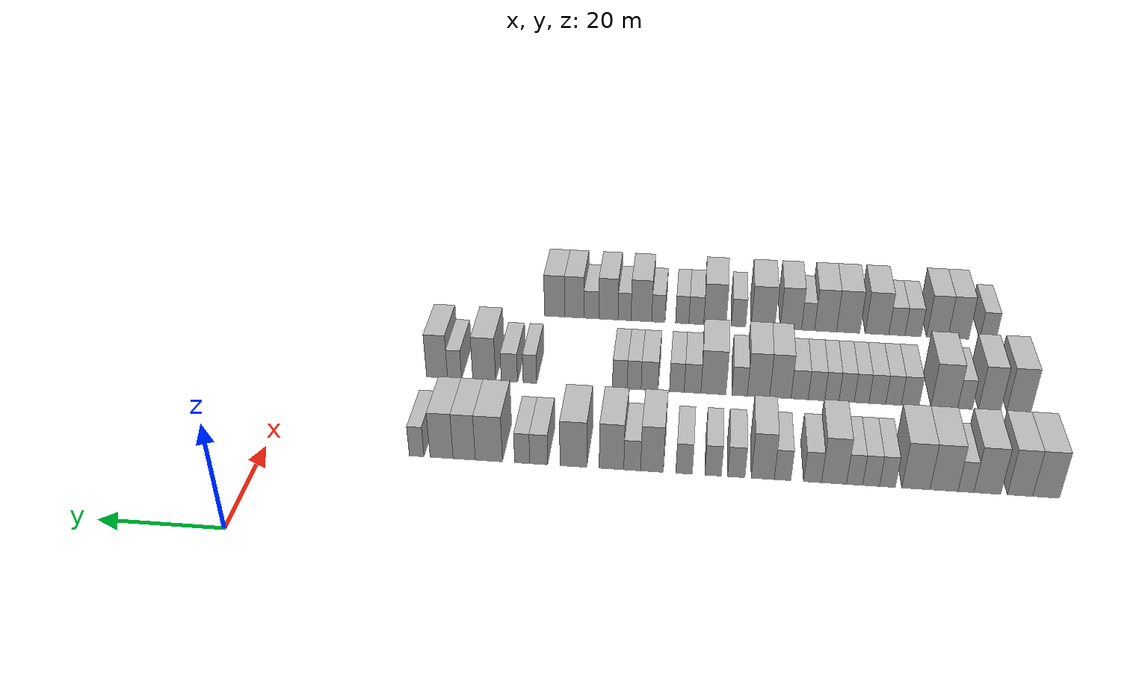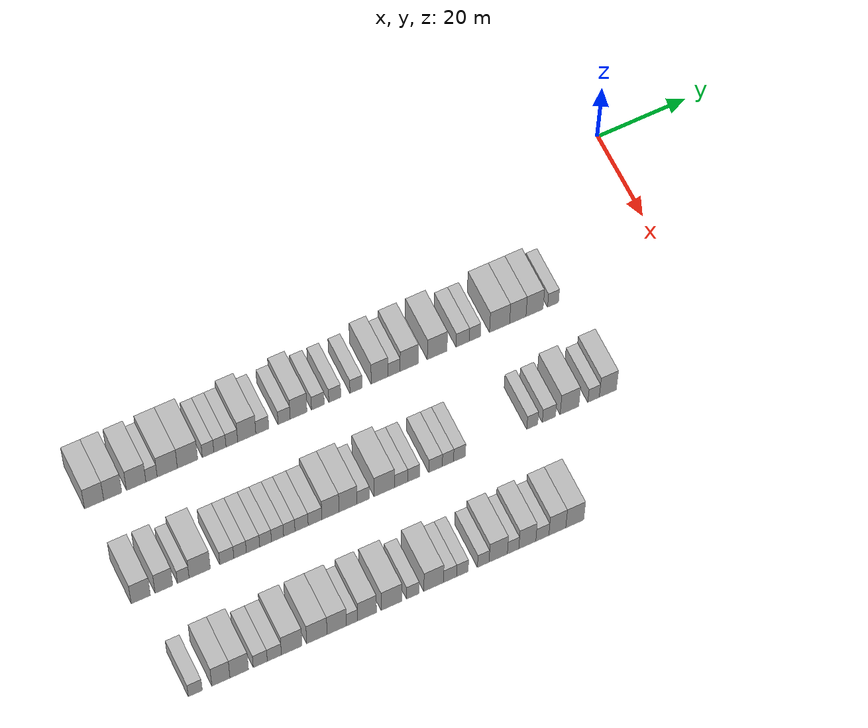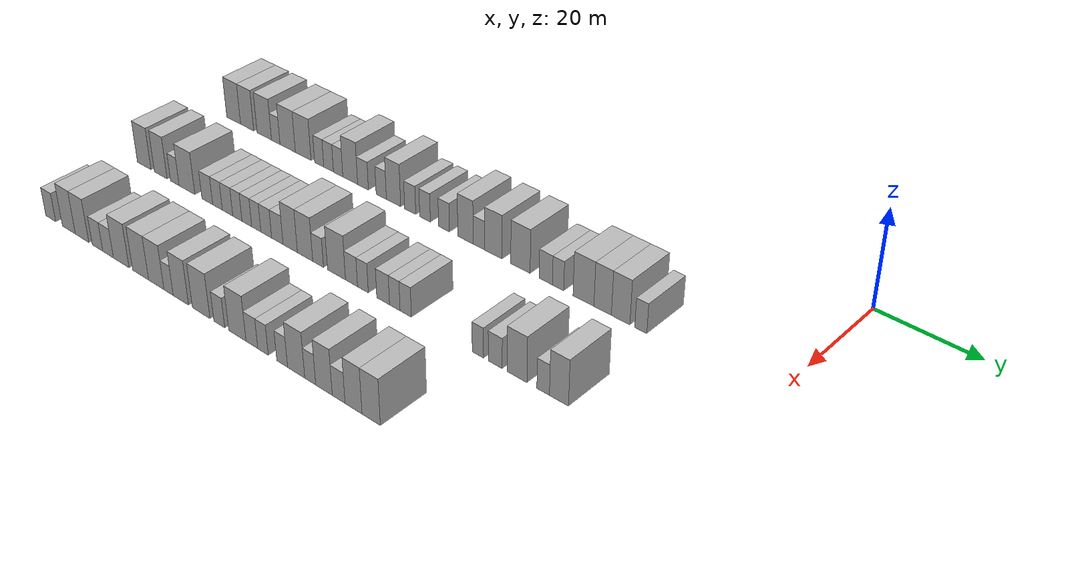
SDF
<sdf version="1.6">
 <world name="default">
  <model name="building_69">
   <static>1</static>
   <pose>25.0000 -124.9205 0 0.000000 0.000000 0.000000</pose>
   <link name="link">
    <pose>0 0 4.50 0 0 0</pose>
    <collision name="collision"><geometry><box><size>10.0000 4.0833 9.0000</size></box></geometry></collision>
    <visual name="visual">
     <cast_shadows>0</cast_shadows>
     <geometry><box><size>10.0000 4.0833 9.0000</size></box></geometry>
     <material>
      <script>
       <uri>model://HANNAS_wall/materials/scripts</uri>
       <uri>model://HANNAS_wall/materials/textures</uri>
       <name>vrc/HANNAS_wall</name>
      </script>
     </material>
    </visual>
   </link>
  </model>
  <model name="building_70">
   <static>1</static>
   <pose>25.0000 -120.9544 0 0.000000 0.000000 0.000000</pose>
   <link name="link">
    <pose>0 0 4.50 0 0 0</pose>
    <collision name="collision"><geometry><box><size>10.0000 3.8489 9.0000</size></box></geometry></collision>
    <visual name="visual">
     <cast_shadows>0</cast_shadows>
     <geometry><box><size>10.0000 3.8489 9.0000</size></box></geometry>
     <material>
      <script>
       <uri>model://HANNAS_wall/materials/scripts</uri>
       <uri>model://HANNAS_wall/materials/textures</uri>
       <name>vrc/HANNAS_wall</name>
      </script>
     </material>
    </visual>
   </link>
  </model>
  <model name="building_71">
   <static>1</static>
   <pose>25.0000 -115.9559 0 0.000000 0.000000 0.000000</pose>
   <link name="link">
    <pose>0 0 4.50 0 0 0</pose>
    <collision name="collision"><geometry><box><size>10.0000 4.1480 9.0000</size></box></geometry></collision>
    <visual name="visual">
     <cast_shadows>0</cast_shadows>
     <geometry><box><size>10.0000 4.1480 9.0000</size></box></geometry>
     <material>
      <script>
       <uri>model://HANNAS_wall/materials/scripts</uri>
       <uri>model://HANNAS_wall/materials/textures</uri>
       <name>vrc/HANNAS_wall</name>
      </script>
     </material>
    </visual>
   </link>
  </model>
  <model name="building_72">
   <static>1</static>
   <pose>25.0000 -112.6771 0 0.000000 0.000000 0.000000</pose>
   <link name="link">
    <pose>0 0 3.00 0 0 0</pose>
    <collision name="collision"><geometry><box><size>10.0000 2.4096 6.0000</size></box></geometry></collision>
    <visual name="visual">
     <cast_shadows>0</cast_shadows>
     <geometry><box><size>10.0000 2.4096 6.0000</size></box></geometry>
     <material>
      <script>
       <uri>model://HANNAS_wall/materials/scripts</uri>
       <uri>model://HANNAS_wall/materials/textures</uri>
       <name>vrc/HANNAS_wall</name>
      </script>
     </material>
    </visual>
   </link>
  </model>
  <model name="building_73">
   <static>1</static>
   <pose>25.0000 -109.3112 0 0.000000 0.000000 0.000000</pose>
   <link name="link">
    <pose>0 0 4.50 0 0 0</pose>
    <collision name="collision"><geometry><box><size>10.0000 4.3222 9.0000</size></box></geometry></collision>
    <visual name="visual">
     <cast_shadows>0</cast_shadows>
     <geometry><box><size>10.0000 4.3222 9.0000</size></box></geometry>
     <material>
      <script>
       <uri>model://HANNAS_wall/materials/scripts</uri>
       <uri>model://HANNAS_wall/materials/textures</uri>
       <name>vrc/HANNAS_wall</name>
      </script>
     </material>
    </visual>
   </link>
  </model>
  <model name="building_74">
   <static>1</static>
   <pose>25.0000 -104.9783 0 0.000000 0.000000 0.000000</pose>
   <link name="link">
    <pose>0 0 4.50 0 0 0</pose>
    <collision name="collision"><geometry><box><size>10.0000 4.3436 9.0000</size></box></geometry></collision>
    <visual name="visual">
     <cast_shadows>0</cast_shadows>
     <geometry><box><size>10.0000 4.3436 9.0000</size></box></geometry>
     <material>
      <script>
       <uri>model://HANNAS_wall/materials/scripts</uri>
       <uri>model://HANNAS_wall/materials/textures</uri>
       <name>vrc/HANNAS_wall</name>
      </script>
     </material>
    </visual>
   </link>
  </model>
  <model name="building_75">
   <static>1</static>
   <pose>25.0000 -100.5676 0 0.000000 0.000000 0.000000</pose>
   <link name="link">
    <pose>0 0 3.00 0 0 0</pose>
    <collision name="collision"><geometry><box><size>10.0000 2.4777 6.0000</size></box></geometry></collision>
    <visual name="visual">
     <cast_shadows>0</cast_shadows>
     <geometry><box><size>10.0000 2.4777 6.0000</size></box></geometry>
     <material>
      <script>
       <uri>model://HANNAS_wall/materials/scripts</uri>
       <uri>model://HANNAS_wall/materials/textures</uri>
       <name>vrc/HANNAS_wall</name>
      </script>
     </material>
    </visual>
   </link>
  </model>
  <model name="building_76">
   <static>1</static>
   <pose>25.0000 -98.0224 0 0.000000 0.000000 0.000000</pose>
   <link name="link">
    <pose>0 0 3.00 0 0 0</pose>
    <collision name="collision"><geometry><box><size>10.0000 2.6128 6.0000</size></box></geometry></collision>
    <visual name="visual">
     <cast_shadows>0</cast_shadows>
     <geometry><box><size>10.0000 2.6128 6.0000</size></box></geometry>
     <material>
      <script>
       <uri>model://HANNAS_wall/materials/scripts</uri>
       <uri>model://HANNAS_wall/materials/textures</uri>
       <name>vrc/HANNAS_wall</name>
      </script>
     </material>
    </visual>
   </link>
  </model>
  <model name="building_77">
   <static>1</static>
   <pose>25.0000 -95.4575 0 0.000000 0.000000 0.000000</pose>
   <link name="link">
    <pose>0 0 3.00 0 0 0</pose>
    <collision name="collision"><geometry><box><size>10.0000 2.5171 6.0000</size></box></geometry></collision>
    <visual name="visual">
     <cast_shadows>0</cast_shadows>
     <geometry><box><size>10.0000 2.5171 6.0000</size></box></geometry>
     <material>
      <script>
       <uri>model://HANNAS_wall/materials/scripts</uri>
       <uri>model://HANNAS_wall/materials/textures</uri>
       <name>vrc/HANNAS_wall</name>
      </script>
     </material>
    </visual>
   </link>
  </model>
  <model name="building_78">
   <static>1</static>
   <pose>25.0000 -92.2451 0 0.000000 0.000000 0.000000</pose>
   <link name="link">
    <pose>0 0 4.50 0 0 0</pose>
    <collision name="collision"><geometry><box><size>10.0000 3.9075 9.0000</size></box></geometry></collision>
    <visual name="visual">
     <cast_shadows>0</cast_shadows>
     <geometry><box><size>10.0000 3.9075 9.0000</size></box></geometry>
     <material>
      <script>
       <uri>model://HANNAS_wall/materials/scripts</uri>
       <uri>model://HANNAS_wall/materials/textures</uri>
       <name>vrc/HANNAS_wall</name>
      </script>
     </material>
    </visual>
   </link>
  </model>
  <model name="building_79">
   <static>1</static>
   <pose>25.0000 -88.8885 0 0.000000 0.000000 0.000000</pose>
   <link name="link">
    <pose>0 0 3.00 0 0 0</pose>
    <collision name="collision"><geometry><box><size>10.0000 2.8058 6.0000</size></box></geometry></collision>
    <visual name="visual">
     <cast_shadows>0</cast_shadows>
     <geometry><box><size>10.0000 2.8058 6.0000</size></box></geometry>
     <material>
      <script>
       <uri>model://HANNAS_wall/materials/scripts</uri>
       <uri>model://HANNAS_wall/materials/textures</uri>
       <name>vrc/HANNAS_wall</name>
      </script>
     </material>
    </visual>
   </link>
  </model>
  <model name="building_80">
   <static>1</static>
   <pose>25.0000 -84.1775 0 0.000000 0.000000 0.000000</pose>
   <link name="link">
    <pose>0 0 3.00 0 0 0</pose>
    <collision name="collision"><geometry><box><size>10.0000 2.6161 6.0000</size></box></geometry></collision>
    <visual name="visual">
     <cast_shadows>0</cast_shadows>
     <geometry><box><size>10.0000 2.6161 6.0000</size></box></geometry>
     <material>
      <script>
       <uri>model://HANNAS_wall/materials/scripts</uri>
       <uri>model://HANNAS_wall/materials/textures</uri>
       <name>vrc/HANNAS_wall</name>
      </script>
     </material>
    </visual>
   </link>
  </model>
  <model name="building_81">
   <static>1</static>
   <pose>25.0000 -81.0556 0 0.000000 0.000000 0.000000</pose>
   <link name="link">
    <pose>0 0 4.50 0 0 0</pose>
    <collision name="collision"><geometry><box><size>10.0000 3.6276 9.0000</size></box></geometry></collision>
    <visual name="visual">
     <cast_shadows>0</cast_shadows>
     <geometry><box><size>10.0000 3.6276 9.0000</size></box></geometry>
     <material>
      <script>
       <uri>model://HANNAS_wall/materials/scripts</uri>
       <uri>model://HANNAS_wall/materials/textures</uri>
       <name>vrc/HANNAS_wall</name>
      </script>
     </material>
    </visual>
   </link>
  </model>
  <model name="building_82">
   <static>1</static>
   <pose>25.0000 -76.8656 0 0.000000 0.000000 0.000000</pose>
   <link name="link">
    <pose>0 0 3.00 0 0 0</pose>
    <collision name="collision"><geometry><box><size>10.0000 2.7524 6.0000</size></box></geometry></collision>
    <visual name="visual">
     <cast_shadows>0</cast_shadows>
     <geometry><box><size>10.0000 2.7524 6.0000</size></box></geometry>
     <material>
      <script>
       <uri>model://HANNAS_wall/materials/scripts</uri>
       <uri>model://HANNAS_wall/materials/textures</uri>
       <name>vrc/HANNAS_wall</name>
      </script>
     </material>
    </visual>
   </link>
  </model>
  <model name="building_83">
   <static>1</static>
   <pose>25.0000 -73.1886 0 0.000000 0.000000 0.000000</pose>
   <link name="link">
    <pose>0 0 3.00 0 0 0</pose>
    <collision name="collision"><geometry><box><size>10.0000 2.6016 6.0000</size></box></geometry></collision>
    <visual name="visual">
     <cast_shadows>0</cast_shadows>
     <geometry><box><size>10.0000 2.6016 6.0000</size></box></geometry>
     <material>
      <script>
       <uri>model://HANNAS_wall/materials/scripts</uri>
       <uri>model://HANNAS_wall/materials/textures</uri>
       <name>vrc/HANNAS_wall</name>
      </script>
     </material>
    </visual>
   </link>
  </model>
  <model name="building_84">
   <static>1</static>
   <pose>25.0000 -68.5757 0 0.000000 0.000000 0.000000</pose>
   <link name="link">
    <pose>0 0 3.00 0 0 0</pose>
    <collision name="collision"><geometry><box><size>10.0000 2.6241 6.0000</size></box></geometry></collision>
    <visual name="visual">
     <cast_shadows>0</cast_shadows>
     <geometry><box><size>10.0000 2.6241 6.0000</size></box></geometry>
     <material>
      <script>
       <uri>model://HANNAS_wall/materials/scripts</uri>
       <uri>model://HANNAS_wall/materials/textures</uri>
       <name>vrc/HANNAS_wall</name>
      </script>
     </material>
    </visual>
   </link>
  </model>
  <model name="building_85">
   <static>1</static>
   <pose>25.0000 -63.4473 0 0.000000 0.000000 0.000000</pose>
   <link name="link">
    <pose>0 0 4.50 0 0 0</pose>
    <collision name="collision"><geometry><box><size>10.0000 3.6327 9.0000</size></box></geometry></collision>
    <visual name="visual">
     <cast_shadows>0</cast_shadows>
     <geometry><box><size>10.0000 3.6327 9.0000</size></box></geometry>
     <material>
      <script>
       <uri>model://HANNAS_wall/materials/scripts</uri>
       <uri>model://HANNAS_wall/materials/textures</uri>
       <name>vrc/HANNAS_wall</name>
      </script>
     </material>
    </visual>
   </link>
  </model>
  <model name="building_86">
   <static>1</static>
   <pose>25.0000 -60.2817 0 0.000000 0.000000 0.000000</pose>
   <link name="link">
    <pose>0 0 3.00 0 0 0</pose>
    <collision name="collision"><geometry><box><size>10.0000 2.6985 6.0000</size></box></geometry></collision>
    <visual name="visual">
     <cast_shadows>0</cast_shadows>
     <geometry><box><size>10.0000 2.6985 6.0000</size></box></geometry>
     <material>
      <script>
       <uri>model://HANNAS_wall/materials/scripts</uri>
       <uri>model://HANNAS_wall/materials/textures</uri>
       <name>vrc/HANNAS_wall</name>
      </script>
     </material>
    </visual>
   </link>
  </model>
  <model name="building_87">
   <static>1</static>
   <pose>25.0000 -56.9543 0 0.000000 0.000000 0.000000</pose>
   <link name="link">
    <pose>0 0 4.50 0 0 0</pose>
    <collision name="collision"><geometry><box><size>10.0000 3.9563 9.0000</size></box></geometry></collision>
    <visual name="visual">
     <cast_shadows>0</cast_shadows>
     <geometry><box><size>10.0000 3.9563 9.0000</size></box></geometry>
     <material>
      <script>
       <uri>model://HANNAS_wall/materials/scripts</uri>
       <uri>model://HANNAS_wall/materials/textures</uri>
       <name>vrc/HANNAS_wall</name>
      </script>
     </material>
    </visual>
   </link>
  </model>
  <model name="building_88">
   <static>1</static>
   <pose>25.0000 -50.8076 0 0.000000 0.000000 0.000000</pose>
   <link name="link">
    <pose>0 0 4.50 0 0 0</pose>
    <collision name="collision"><geometry><box><size>10.0000 4.3370 9.0000</size></box></geometry></collision>
    <visual name="visual">
     <cast_shadows>0</cast_shadows>
     <geometry><box><size>10.0000 4.3370 9.0000</size></box></geometry>
     <material>
      <script>
       <uri>model://HANNAS_wall/materials/scripts</uri>
       <uri>model://HANNAS_wall/materials/textures</uri>
       <name>vrc/HANNAS_wall</name>
      </script>
     </material>
    </visual>
   </link>
  </model>
  <model name="building_89">
   <static>1</static>
   <pose>25.0000 -45.1847 0 0.000000 0.000000 0.000000</pose>
   <link name="link">
    <pose>0 0 3.00 0 0 0</pose>
    <collision name="collision"><geometry><box><size>10.0000 2.9088 6.0000</size></box></geometry></collision>
    <visual name="visual">
     <cast_shadows>0</cast_shadows>
     <geometry><box><size>10.0000 2.9088 6.0000</size></box></geometry>
     <material>
      <script>
       <uri>model://HANNAS_wall/materials/scripts</uri>
       <uri>model://HANNAS_wall/materials/textures</uri>
       <name>vrc/HANNAS_wall</name>
      </script>
     </material>
    </visual>
   </link>
  </model>
  <model name="building_90">
   <static>1</static>
   <pose>25.0000 -42.4998 0 0.000000 0.000000 0.000000</pose>
   <link name="link">
    <pose>0 0 3.00 0 0 0</pose>
    <collision name="collision"><geometry><box><size>10.0000 2.4610 6.0000</size></box></geometry></collision>
    <visual name="visual">
     <cast_shadows>0</cast_shadows>
     <geometry><box><size>10.0000 2.4610 6.0000</size></box></geometry>
     <material>
      <script>
       <uri>model://HANNAS_wall/materials/scripts</uri>
       <uri>model://HANNAS_wall/materials/textures</uri>
       <name>vrc/HANNAS_wall</name>
      </script>
     </material>
    </visual>
   </link>
  </model>
  <model name="building_91">
   <static>1</static>
   <pose>25.0000 -37.0512 0 0.000000 0.000000 0.000000</pose>
   <link name="link">
    <pose>0 0 4.50 0 0 0</pose>
    <collision name="collision"><geometry><box><size>10.0000 4.4362 9.0000</size></box></geometry></collision>
    <visual name="visual">
     <cast_shadows>0</cast_shadows>
     <geometry><box><size>10.0000 4.4362 9.0000</size></box></geometry>
     <material>
      <script>
       <uri>model://HANNAS_wall/materials/scripts</uri>
       <uri>model://HANNAS_wall/materials/textures</uri>
       <name>vrc/HANNAS_wall</name>
      </script>
     </material>
    </visual>
   </link>
  </model>
  <model name="building_92">
   <static>1</static>
   <pose>25.0000 -33.0126 0 0.000000 0.000000 0.000000</pose>
   <link name="link">
    <pose>0 0 4.50 0 0 0</pose>
    <collision name="collision"><geometry><box><size>10.0000 3.6410 9.0000</size></box></geometry></collision>
    <visual name="visual">
     <cast_shadows>0</cast_shadows>
     <geometry><box><size>10.0000 3.6410 9.0000</size></box></geometry>
     <material>
      <script>
       <uri>model://HANNAS_wall/materials/scripts</uri>
       <uri>model://HANNAS_wall/materials/textures</uri>
       <name>vrc/HANNAS_wall</name>
      </script>
     </material>
    </visual>
   </link>
  </model>
  <model name="building_93">
   <static>1</static>
   <pose>25.0000 -29.2909 0 0.000000 0.000000 0.000000</pose>
   <link name="link">
    <pose>0 0 4.50 0 0 0</pose>
    <collision name="collision"><geometry><box><size>10.0000 3.8023 9.0000</size></box></geometry></collision>
    <visual name="visual">
     <cast_shadows>0</cast_shadows>
     <geometry><box><size>10.0000 3.8023 9.0000</size></box></geometry>
     <material>
      <script>
       <uri>model://HANNAS_wall/materials/scripts</uri>
       <uri>model://HANNAS_wall/materials/textures</uri>
       <name>vrc/HANNAS_wall</name>
      </script>
     </material>
    </visual>
   </link>
  </model>
  <model name="building_94">
   <static>1</static>
   <pose>25.0000 -25.1816 0 0.000000 0.000000 0.000000</pose>
   <link name="link">
    <pose>0 0 3.00 0 0 0</pose>
    <collision name="collision"><geometry><box><size>10.0000 2.4165 6.0000</size></box></geometry></collision>
    <visual name="visual">
     <cast_shadows>0</cast_shadows>
     <geometry><box><size>10.0000 2.4165 6.0000</size></box></geometry>
     <material>
      <script>
       <uri>model://HANNAS_wall/materials/scripts</uri>
       <uri>model://HANNAS_wall/materials/textures</uri>
       <name>vrc/HANNAS_wall</name>
      </script>
     </material>
    </visual>
   </link>
  </model>
  <model name="building_263">
   <static>1</static>
   <pose>47.0000 -124.8243 0 0.000000 0.000000 0.000000</pose>
   <link name="link">
    <pose>0 0 4.50 0 0 0</pose>
    <collision name="collision"><geometry><box><size>10.0000 4.0367 9.0000</size></box></geometry></collision>
    <visual name="visual">
     <cast_shadows>0</cast_shadows>
     <geometry><box><size>10.0000 4.0367 9.0000</size></box></geometry>
     <material>
      <script>
       <uri>model://HANNAS_wall/materials/scripts</uri>
       <uri>model://HANNAS_wall/materials/textures</uri>
       <name>vrc/HANNAS_wall</name>
      </script>
     </material>
    </visual>
   </link>
  </model>
  <model name="building_264">
   <static>1</static>
   <pose>47.0000 -119.9423 0 0.000000 0.000000 0.000000</pose>
   <link name="link">
    <pose>0 0 4.50 0 0 0</pose>
    <collision name="collision"><geometry><box><size>10.0000 3.7274 9.0000</size></box></geometry></collision>
    <visual name="visual">
     <cast_shadows>0</cast_shadows>
     <geometry><box><size>10.0000 3.7274 9.0000</size></box></geometry>
     <material>
      <script>
       <uri>model://HANNAS_wall/materials/scripts</uri>
       <uri>model://HANNAS_wall/materials/textures</uri>
       <name>vrc/HANNAS_wall</name>
      </script>
     </material>
    </visual>
   </link>
  </model>
  <model name="building_265">
   <static>1</static>
   <pose>47.0000 -115.8486 0 0.000000 0.000000 0.000000</pose>
   <link name="link">
    <pose>0 0 3.00 0 0 0</pose>
    <collision name="collision"><geometry><box><size>10.0000 2.4600 6.0000</size></box></geometry></collision>
    <visual name="visual">
     <cast_shadows>0</cast_shadows>
     <geometry><box><size>10.0000 2.4600 6.0000</size></box></geometry>
     <material>
      <script>
       <uri>model://HANNAS_wall/materials/scripts</uri>
       <uri>model://HANNAS_wall/materials/textures</uri>
       <name>vrc/HANNAS_wall</name>
      </script>
     </material>
    </visual>
   </link>
  </model>
  <model name="building_266">
   <static>1</static>
   <pose>47.0000 -112.3715 0 0.000000 0.000000 0.000000</pose>
   <link name="link">
    <pose>0 0 4.50 0 0 0</pose>
    <collision name="collision"><geometry><box><size>10.0000 4.4941 9.0000</size></box></geometry></collision>
    <visual name="visual">
     <cast_shadows>0</cast_shadows>
     <geometry><box><size>10.0000 4.4941 9.0000</size></box></geometry>
     <material>
      <script>
       <uri>model://HANNAS_wall/materials/scripts</uri>
       <uri>model://HANNAS_wall/materials/textures</uri>
       <name>vrc/HANNAS_wall</name>
      </script>
     </material>
    </visual>
   </link>
  </model>
  <model name="building_267">
   <static>1</static>
   <pose>47.0000 -106.6256 0 0.000000 0.000000 0.000000</pose>
   <link name="link">
    <pose>0 0 3.00 0 0 0</pose>
    <collision name="collision"><geometry><box><size>10.0000 2.9976 6.0000</size></box></geometry></collision>
    <visual name="visual">
     <cast_shadows>0</cast_shadows>
     <geometry><box><size>10.0000 2.9976 6.0000</size></box></geometry>
     <material>
      <script>
       <uri>model://HANNAS_wall/materials/scripts</uri>
       <uri>model://HANNAS_wall/materials/textures</uri>
       <name>vrc/HANNAS_wall</name>
      </script>
     </material>
    </visual>
   </link>
  </model>
  <model name="building_268">
   <static>1</static>
   <pose>47.0000 -103.7980 0 0.000000 0.000000 0.000000</pose>
   <link name="link">
    <pose>0 0 3.00 0 0 0</pose>
    <collision name="collision"><geometry><box><size>10.0000 2.6575 6.0000</size></box></geometry></collision>
    <visual name="visual">
     <cast_shadows>0</cast_shadows>
     <geometry><box><size>10.0000 2.6575 6.0000</size></box></geometry>
     <material>
      <script>
       <uri>model://HANNAS_wall/materials/scripts</uri>
       <uri>model://HANNAS_wall/materials/textures</uri>
       <name>vrc/HANNAS_wall</name>
      </script>
     </material>
    </visual>
   </link>
  </model>
  <model name="building_269">
   <static>1</static>
   <pose>47.0000 -101.0437 0 0.000000 0.000000 0.000000</pose>
   <link name="link">
    <pose>0 0 3.00 0 0 0</pose>
    <collision name="collision"><geometry><box><size>10.0000 2.8513 6.0000</size></box></geometry></collision>
    <visual name="visual">
     <cast_shadows>0</cast_shadows>
     <geometry><box><size>10.0000 2.8513 6.0000</size></box></geometry>
     <material>
      <script>
       <uri>model://HANNAS_wall/materials/scripts</uri>
       <uri>model://HANNAS_wall/materials/textures</uri>
       <name>vrc/HANNAS_wall</name>
      </script>
     </material>
    </visual>
   </link>
  </model>
  <model name="building_270">
   <static>1</static>
   <pose>47.0000 -98.3698 0 0.000000 0.000000 0.000000</pose>
   <link name="link">
    <pose>0 0 3.00 0 0 0</pose>
    <collision name="collision"><geometry><box><size>10.0000 2.4966 6.0000</size></box></geometry></collision>
    <visual name="visual">
     <cast_shadows>0</cast_shadows>
     <geometry><box><size>10.0000 2.4966 6.0000</size></box></geometry>
     <material>
      <script>
       <uri>model://HANNAS_wall/materials/scripts</uri>
       <uri>model://HANNAS_wall/materials/textures</uri>
       <name>vrc/HANNAS_wall</name>
      </script>
     </material>
    </visual>
   </link>
  </model>
  <model name="building_271">
   <static>1</static>
   <pose>47.0000 -95.8245 0 0.000000 0.000000 0.000000</pose>
   <link name="link">
    <pose>0 0 3.00 0 0 0</pose>
    <collision name="collision"><geometry><box><size>10.0000 2.5940 6.0000</size></box></geometry></collision>
    <visual name="visual">
     <cast_shadows>0</cast_shadows>
     <geometry><box><size>10.0000 2.5940 6.0000</size></box></geometry>
     <material>
      <script>
       <uri>model://HANNAS_wall/materials/scripts</uri>
       <uri>model://HANNAS_wall/materials/textures</uri>
       <name>vrc/HANNAS_wall</name>
      </script>
     </material>
    </visual>
   </link>
  </model>
  <model name="building_272">
   <static>1</static>
   <pose>47.0000 -93.3109 0 0.000000 0.000000 0.000000</pose>
   <link name="link">
    <pose>0 0 3.00 0 0 0</pose>
    <collision name="collision"><geometry><box><size>10.0000 2.4330 6.0000</size></box></geometry></collision>
    <visual name="visual">
     <cast_shadows>0</cast_shadows>
     <geometry><box><size>10.0000 2.4330 6.0000</size></box></geometry>
     <material>
      <script>
       <uri>model://HANNAS_wall/materials/scripts</uri>
       <uri>model://HANNAS_wall/materials/textures</uri>
       <name>vrc/HANNAS_wall</name>
      </script>
     </material>
    </visual>
   </link>
  </model>
  <model name="building_273">
   <static>1</static>
   <pose>47.0000 -90.6848 0 0.000000 0.000000 0.000000</pose>
   <link name="link">
    <pose>0 0 3.00 0 0 0</pose>
    <collision name="collision"><geometry><box><size>10.0000 2.8192 6.0000</size></box></geometry></collision>
    <visual name="visual">
     <cast_shadows>0</cast_shadows>
     <geometry><box><size>10.0000 2.8192 6.0000</size></box></geometry>
     <material>
      <script>
       <uri>model://HANNAS_wall/materials/scripts</uri>
       <uri>model://HANNAS_wall/materials/textures</uri>
       <name>vrc/HANNAS_wall</name>
      </script>
     </material>
    </visual>
   </link>
  </model>
  <model name="building_274">
   <static>1</static>
   <pose>47.0000 -87.8040 0 0.000000 0.000000 0.000000</pose>
   <link name="link">
    <pose>0 0 3.00 0 0 0</pose>
    <collision name="collision"><geometry><box><size>10.0000 2.9424 6.0000</size></box></geometry></collision>
    <visual name="visual">
     <cast_shadows>0</cast_shadows>
     <geometry><box><size>10.0000 2.9424 6.0000</size></box></geometry>
     <material>
      <script>
       <uri>model://HANNAS_wall/materials/scripts</uri>
       <uri>model://HANNAS_wall/materials/textures</uri>
       <name>vrc/HANNAS_wall</name>
      </script>
     </material>
    </visual>
   </link>
  </model>
  <model name="building_275">
   <static>1</static>
   <pose>47.0000 -84.4984 0 0.000000 0.000000 0.000000</pose>
   <link name="link">
    <pose>0 0 4.50 0 0 0</pose>
    <collision name="collision"><geometry><box><size>10.0000 3.6687 9.0000</size></box></geometry></collision>
    <visual name="visual">
     <cast_shadows>0</cast_shadows>
     <geometry><box><size>10.0000 3.6687 9.0000</size></box></geometry>
     <material>
      <script>
       <uri>model://HANNAS_wall/materials/scripts</uri>
       <uri>model://HANNAS_wall/materials/textures</uri>
       <name>vrc/HANNAS_wall</name>
      </script>
     </material>
    </visual>
   </link>
  </model>
  <model name="building_276">
   <static>1</static>
   <pose>47.0000 -80.7338 0 0.000000 0.000000 0.000000</pose>
   <link name="link">
    <pose>0 0 4.50 0 0 0</pose>
    <collision name="collision"><geometry><box><size>10.0000 3.8605 9.0000</size></box></geometry></collision>
    <visual name="visual">
     <cast_shadows>0</cast_shadows>
     <geometry><box><size>10.0000 3.8605 9.0000</size></box></geometry>
     <material>
      <script>
       <uri>model://HANNAS_wall/materials/scripts</uri>
       <uri>model://HANNAS_wall/materials/textures</uri>
       <name>vrc/HANNAS_wall</name>
      </script>
     </material>
    </visual>
   </link>
  </model>
  <model name="building_277">
   <static>1</static>
   <pose>47.0000 -77.4662 0 0.000000 0.000000 0.000000</pose>
   <link name="link">
    <pose>0 0 3.00 0 0 0</pose>
    <collision name="collision"><geometry><box><size>10.0000 2.6748 6.0000</size></box></geometry></collision>
    <visual name="visual">
     <cast_shadows>0</cast_shadows>
     <geometry><box><size>10.0000 2.6748 6.0000</size></box></geometry>
     <material>
      <script>
       <uri>model://HANNAS_wall/materials/scripts</uri>
       <uri>model://HANNAS_wall/materials/textures</uri>
       <name>vrc/HANNAS_wall</name>
      </script>
     </material>
    </visual>
   </link>
  </model>
  <model name="building_278">
   <static>1</static>
   <pose>47.0000 -72.9464 0 0.000000 0.000000 0.000000</pose>
   <link name="link">
    <pose>0 0 4.50 0 0 0</pose>
    <collision name="collision"><geometry><box><size>10.0000 4.3647 9.0000</size></box></geometry></collision>
    <visual name="visual">
     <cast_shadows>0</cast_shadows>
     <geometry><box><size>10.0000 4.3647 9.0000</size></box></geometry>
     <material>
      <script>
       <uri>model://HANNAS_wall/materials/scripts</uri>
       <uri>model://HANNAS_wall/materials/textures</uri>
       <name>vrc/HANNAS_wall</name>
      </script>
     </material>
    </visual>
   </link>
  </model>
  <model name="building_279">
   <static>1</static>
   <pose>47.0000 -69.3151 0 0.000000 0.000000 0.000000</pose>
   <link name="link">
    <pose>0 0 3.00 0 0 0</pose>
    <collision name="collision"><geometry><box><size>10.0000 2.8981 6.0000</size></box></geometry></collision>
    <visual name="visual">
     <cast_shadows>0</cast_shadows>
     <geometry><box><size>10.0000 2.8981 6.0000</size></box></geometry>
     <material>
      <script>
       <uri>model://HANNAS_wall/materials/scripts</uri>
       <uri>model://HANNAS_wall/materials/textures</uri>
       <name>vrc/HANNAS_wall</name>
      </script>
     </material>
    </visual>
   </link>
  </model>
  <model name="building_280">
   <static>1</static>
   <pose>47.0000 -66.5887 0 0.000000 0.000000 0.000000</pose>
   <link name="link">
    <pose>0 0 3.00 0 0 0</pose>
    <collision name="collision"><geometry><box><size>10.0000 2.5547 6.0000</size></box></geometry></collision>
    <visual name="visual">
     <cast_shadows>0</cast_shadows>
     <geometry><box><size>10.0000 2.5547 6.0000</size></box></geometry>
     <material>
      <script>
       <uri>model://HANNAS_wall/materials/scripts</uri>
       <uri>model://HANNAS_wall/materials/textures</uri>
       <name>vrc/HANNAS_wall</name>
      </script>
     </material>
    </visual>
   </link>
  </model>
  <model name="building_281">
   <static>1</static>
   <pose>47.0000 -61.8345 0 0.000000 0.000000 0.000000</pose>
   <link name="link">
    <pose>0 0 3.00 0 0 0</pose>
    <collision name="collision"><geometry><box><size>10.0000 2.9538 6.0000</size></box></geometry></collision>
    <visual name="visual">
     <cast_shadows>0</cast_shadows>
     <geometry><box><size>10.0000 2.9538 6.0000</size></box></geometry>
     <material>
      <script>
       <uri>model://HANNAS_wall/materials/scripts</uri>
       <uri>model://HANNAS_wall/materials/textures</uri>
       <name>vrc/HANNAS_wall</name>
      </script>
     </material>
    </visual>
   </link>
  </model>
  <model name="building_282">
   <static>1</static>
   <pose>47.0000 -59.1403 0 0.000000 0.000000 0.000000</pose>
   <link name="link">
    <pose>0 0 3.00 0 0 0</pose>
    <collision name="collision"><geometry><box><size>10.0000 2.4345 6.0000</size></box></geometry></collision>
    <visual name="visual">
     <cast_shadows>0</cast_shadows>
     <geometry><box><size>10.0000 2.4345 6.0000</size></box></geometry>
     <material>
      <script>
       <uri>model://HANNAS_wall/materials/scripts</uri>
       <uri>model://HANNAS_wall/materials/textures</uri>
       <name>vrc/HANNAS_wall</name>
      </script>
     </material>
    </visual>
   </link>
  </model>
  <model name="building_283">
   <static>1</static>
   <pose>47.0000 -56.6366 0 0.000000 0.000000 0.000000</pose>
   <link name="link">
    <pose>0 0 3.00 0 0 0</pose>
    <collision name="collision"><geometry><box><size>10.0000 2.5730 6.0000</size></box></geometry></collision>
    <visual name="visual">
     <cast_shadows>0</cast_shadows>
     <geometry><box><size>10.0000 2.5730 6.0000</size></box></geometry>
     <material>
      <script>
       <uri>model://HANNAS_wall/materials/scripts</uri>
       <uri>model://HANNAS_wall/materials/textures</uri>
       <name>vrc/HANNAS_wall</name>
      </script>
     </material>
    </visual>
   </link>
  </model>
  <model name="building_284">
   <static>1</static>
   <pose>47.0000 -40.7492 0 0.000000 0.000000 0.000000</pose>
   <link name="link">
    <pose>0 0 3.00 0 0 0</pose>
    <collision name="collision"><geometry><box><size>10.0000 2.4006 6.0000</size></box></geometry></collision>
    <visual name="visual">
     <cast_shadows>0</cast_shadows>
     <geometry><box><size>10.0000 2.4006 6.0000</size></box></geometry>
     <material>
      <script>
       <uri>model://HANNAS_wall/materials/scripts</uri>
       <uri>model://HANNAS_wall/materials/textures</uri>
       <name>vrc/HANNAS_wall</name>
      </script>
     </material>
    </visual>
   </link>
  </model>
  <model name="building_285">
   <static>1</static>
   <pose>47.0000 -37.0974 0 0.000000 0.000000 0.000000</pose>
   <link name="link">
    <pose>0 0 3.00 0 0 0</pose>
    <collision name="collision"><geometry><box><size>10.0000 2.9030 6.0000</size></box></geometry></collision>
    <visual name="visual">
     <cast_shadows>0</cast_shadows>
     <geometry><box><size>10.0000 2.9030 6.0000</size></box></geometry>
     <material>
      <script>
       <uri>model://HANNAS_wall/materials/scripts</uri>
       <uri>model://HANNAS_wall/materials/textures</uri>
       <name>vrc/HANNAS_wall</name>
      </script>
     </material>
    </visual>
   </link>
  </model>
  <model name="building_286">
   <static>1</static>
   <pose>47.0000 -32.5975 0 0.000000 0.000000 0.000000</pose>
   <link name="link">
    <pose>0 0 4.50 0 0 0</pose>
    <collision name="collision"><geometry><box><size>10.0000 4.0967 9.0000</size></box></geometry></collision>
    <visual name="visual">
     <cast_shadows>0</cast_shadows>
     <geometry><box><size>10.0000 4.0967 9.0000</size></box></geometry>
     <material>
      <script>
       <uri>model://HANNAS_wall/materials/scripts</uri>
       <uri>model://HANNAS_wall/materials/textures</uri>
       <name>vrc/HANNAS_wall</name>
      </script>
     </material>
    </visual>
   </link>
  </model>
  <model name="building_287">
   <static>1</static>
   <pose>47.0000 -27.2857 0 0.000000 0.000000 0.000000</pose>
   <link name="link">
    <pose>0 0 3.00 0 0 0</pose>
    <collision name="collision"><geometry><box><size>10.0000 2.5270 6.0000</size></box></geometry></collision>
    <visual name="visual">
     <cast_shadows>0</cast_shadows>
     <geometry><box><size>10.0000 2.5270 6.0000</size></box></geometry>
     <material>
      <script>
       <uri>model://HANNAS_wall/materials/scripts</uri>
       <uri>model://HANNAS_wall/materials/textures</uri>
       <name>vrc/HANNAS_wall</name>
      </script>
     </material>
    </visual>
   </link>
  </model>
  <model name="building_288">
   <static>1</static>
   <pose>47.0000 -24.1423 0 0.000000 0.000000 0.000000</pose>
   <link name="link">
    <pose>0 0 4.50 0 0 0</pose>
    <collision name="collision"><geometry><box><size>10.0000 3.7597 9.0000</size></box></geometry></collision>
    <visual name="visual">
     <cast_shadows>0</cast_shadows>
     <geometry><box><size>10.0000 3.7597 9.0000</size></box></geometry>
     <material>
      <script>
       <uri>model://HANNAS_wall/materials/scripts</uri>
       <uri>model://HANNAS_wall/materials/textures</uri>
       <name>vrc/HANNAS_wall</name>
      </script>
     </material>
    </visual>
   </link>
  </model>
  <model name="building_443">
   <static>1</static>
   <pose>69.0000 -123.3096 0 0.000000 0.000000 0.000000</pose>
   <link name="link">
    <pose>0 0 3.00 0 0 0</pose>
    <collision name="collision"><geometry><box><size>10.0000 2.9277 6.0000</size></box></geometry></collision>
    <visual name="visual">
     <cast_shadows>0</cast_shadows>
     <geometry><box><size>10.0000 2.9277 6.0000</size></box></geometry>
     <material>
      <script>
       <uri>model://HANNAS_wall/materials/scripts</uri>
       <uri>model://HANNAS_wall/materials/textures</uri>
       <name>vrc/HANNAS_wall</name>
      </script>
     </material>
    </visual>
   </link>
  </model>
  <model name="building_444">
   <static>1</static>
   <pose>69.0000 -117.9499 0 0.000000 0.000000 0.000000</pose>
   <link name="link">
    <pose>0 0 4.50 0 0 0</pose>
    <collision name="collision"><geometry><box><size>10.0000 3.7918 9.0000</size></box></geometry></collision>
    <visual name="visual">
     <cast_shadows>0</cast_shadows>
     <geometry><box><size>10.0000 3.7918 9.0000</size></box></geometry>
     <material>
      <script>
       <uri>model://HANNAS_wall/materials/scripts</uri>
       <uri>model://HANNAS_wall/materials/textures</uri>
       <name>vrc/HANNAS_wall</name>
      </script>
     </material>
    </visual>
   </link>
  </model>
  <model name="building_445">
   <static>1</static>
   <pose>69.0000 -114.1081 0 0.000000 0.000000 0.000000</pose>
   <link name="link">
    <pose>0 0 4.50 0 0 0</pose>
    <collision name="collision"><geometry><box><size>10.0000 3.8918 9.0000</size></box></geometry></collision>
    <visual name="visual">
     <cast_shadows>0</cast_shadows>
     <geometry><box><size>10.0000 3.8918 9.0000</size></box></geometry>
     <material>
      <script>
       <uri>model://HANNAS_wall/materials/scripts</uri>
       <uri>model://HANNAS_wall/materials/textures</uri>
       <name>vrc/HANNAS_wall</name>
      </script>
     </material>
    </visual>
   </link>
  </model>
  <model name="building_446">
   <static>1</static>
   <pose>69.0000 -109.6841 0 0.000000 0.000000 0.000000</pose>
   <link name="link">
    <pose>0 0 3.00 0 0 0</pose>
    <collision name="collision"><geometry><box><size>10.0000 2.9561 6.0000</size></box></geometry></collision>
    <visual name="visual">
     <cast_shadows>0</cast_shadows>
     <geometry><box><size>10.0000 2.9561 6.0000</size></box></geometry>
     <material>
      <script>
       <uri>model://HANNAS_wall/materials/scripts</uri>
       <uri>model://HANNAS_wall/materials/textures</uri>
       <name>vrc/HANNAS_wall</name>
      </script>
     </material>
    </visual>
   </link>
  </model>
  <model name="building_447">
   <static>1</static>
   <pose>69.0000 -106.7159 0 0.000000 0.000000 0.000000</pose>
   <link name="link">
    <pose>0 0 3.00 0 0 0</pose>
    <collision name="collision"><geometry><box><size>10.0000 2.9802 6.0000</size></box></geometry></collision>
    <visual name="visual">
     <cast_shadows>0</cast_shadows>
     <geometry><box><size>10.0000 2.9802 6.0000</size></box></geometry>
     <material>
      <script>
       <uri>model://HANNAS_wall/materials/scripts</uri>
       <uri>model://HANNAS_wall/materials/textures</uri>
       <name>vrc/HANNAS_wall</name>
      </script>
     </material>
    </visual>
   </link>
  </model>
  <model name="building_448">
   <static>1</static>
   <pose>69.0000 -103.0597 0 0.000000 0.000000 0.000000</pose>
   <link name="link">
    <pose>0 0 4.50 0 0 0</pose>
    <collision name="collision"><geometry><box><size>10.0000 4.3323 9.0000</size></box></geometry></collision>
    <visual name="visual">
     <cast_shadows>0</cast_shadows>
     <geometry><box><size>10.0000 4.3323 9.0000</size></box></geometry>
     <material>
      <script>
       <uri>model://HANNAS_wall/materials/scripts</uri>
       <uri>model://HANNAS_wall/materials/textures</uri>
       <name>vrc/HANNAS_wall</name>
      </script>
     </material>
    </visual>
   </link>
  </model>
  <model name="building_449">
   <static>1</static>
   <pose>69.0000 -97.7449 0 0.000000 0.000000 0.000000</pose>
   <link name="link">
    <pose>0 0 4.50 0 0 0</pose>
    <collision name="collision"><geometry><box><size>10.0000 4.2972 9.0000</size></box></geometry></collision>
    <visual name="visual">
     <cast_shadows>0</cast_shadows>
     <geometry><box><size>10.0000 4.2972 9.0000</size></box></geometry>
     <material>
      <script>
       <uri>model://HANNAS_wall/materials/scripts</uri>
       <uri>model://HANNAS_wall/materials/textures</uri>
       <name>vrc/HANNAS_wall</name>
      </script>
     </material>
    </visual>
   </link>
  </model>
  <model name="building_450">
   <static>1</static>
   <pose>69.0000 -93.5588 0 0.000000 0.000000 0.000000</pose>
   <link name="link">
    <pose>0 0 4.50 0 0 0</pose>
    <collision name="collision"><geometry><box><size>10.0000 4.0749 9.0000</size></box></geometry></collision>
    <visual name="visual">
     <cast_shadows>0</cast_shadows>
     <geometry><box><size>10.0000 4.0749 9.0000</size></box></geometry>
     <material>
      <script>
       <uri>model://HANNAS_wall/materials/scripts</uri>
       <uri>model://HANNAS_wall/materials/textures</uri>
       <name>vrc/HANNAS_wall</name>
      </script>
     </material>
    </visual>
   </link>
  </model>
  <model name="building_451">
   <static>1</static>
   <pose>69.0000 -90.3130 0 0.000000 0.000000 0.000000</pose>
   <link name="link">
    <pose>0 0 3.00 0 0 0</pose>
    <collision name="collision"><geometry><box><size>10.0000 2.4167 6.0000</size></box></geometry></collision>
    <visual name="visual">
     <cast_shadows>0</cast_shadows>
     <geometry><box><size>10.0000 2.4167 6.0000</size></box></geometry>
     <material>
      <script>
       <uri>model://HANNAS_wall/materials/scripts</uri>
       <uri>model://HANNAS_wall/materials/textures</uri>
       <name>vrc/HANNAS_wall</name>
      </script>
     </material>
    </visual>
   </link>
  </model>
  <model name="building_452">
   <static>1</static>
   <pose>69.0000 -87.1180 0 0.000000 0.000000 0.000000</pose>
   <link name="link">
    <pose>0 0 4.50 0 0 0</pose>
    <collision name="collision"><geometry><box><size>10.0000 3.9733 9.0000</size></box></geometry></collision>
    <visual name="visual">
     <cast_shadows>0</cast_shadows>
     <geometry><box><size>10.0000 3.9733 9.0000</size></box></geometry>
     <material>
      <script>
       <uri>model://HANNAS_wall/materials/scripts</uri>
       <uri>model://HANNAS_wall/materials/textures</uri>
       <name>vrc/HANNAS_wall</name>
      </script>
     </material>
    </visual>
   </link>
  </model>
  <model name="building_453">
   <static>1</static>
   <pose>69.0000 -81.9198 0 0.000000 0.000000 0.000000</pose>
   <link name="link">
    <pose>0 0 4.50 0 0 0</pose>
    <collision name="collision"><geometry><box><size>10.0000 4.4231 9.0000</size></box></geometry></collision>
    <visual name="visual">
     <cast_shadows>0</cast_shadows>
     <geometry><box><size>10.0000 4.4231 9.0000</size></box></geometry>
     <material>
      <script>
       <uri>model://HANNAS_wall/materials/scripts</uri>
       <uri>model://HANNAS_wall/materials/textures</uri>
       <name>vrc/HANNAS_wall</name>
      </script>
     </material>
    </visual>
   </link>
  </model>
  <model name="building_454">
   <static>1</static>
   <pose>69.0000 -77.3632 0 0.000000 0.000000 0.000000</pose>
   <link name="link">
    <pose>0 0 3.00 0 0 0</pose>
    <collision name="collision"><geometry><box><size>10.0000 2.6903 6.0000</size></box></geometry></collision>
    <visual name="visual">
     <cast_shadows>0</cast_shadows>
     <geometry><box><size>10.0000 2.6903 6.0000</size></box></geometry>
     <material>
      <script>
       <uri>model://HANNAS_wall/materials/scripts</uri>
       <uri>model://HANNAS_wall/materials/textures</uri>
       <name>vrc/HANNAS_wall</name>
      </script>
     </material>
    </visual>
   </link>
  </model>
  <model name="building_455">
   <static>1</static>
   <pose>69.0000 -72.9143 0 0.000000 0.000000 0.000000</pose>
   <link name="link">
    <pose>0 0 4.50 0 0 0</pose>
    <collision name="collision"><geometry><box><size>10.0000 4.2075 9.0000</size></box></geometry></collision>
    <visual name="visual">
     <cast_shadows>0</cast_shadows>
     <geometry><box><size>10.0000 4.2075 9.0000</size></box></geometry>
     <material>
      <script>
       <uri>model://HANNAS_wall/materials/scripts</uri>
       <uri>model://HANNAS_wall/materials/textures</uri>
       <name>vrc/HANNAS_wall</name>
      </script>
     </material>
    </visual>
   </link>
  </model>
  <model name="building_456">
   <static>1</static>
   <pose>69.0000 -69.4107 0 0.000000 0.000000 0.000000</pose>
   <link name="link">
    <pose>0 0 3.00 0 0 0</pose>
    <collision name="collision"><geometry><box><size>10.0000 2.7996 6.0000</size></box></geometry></collision>
    <visual name="visual">
     <cast_shadows>0</cast_shadows>
     <geometry><box><size>10.0000 2.7996 6.0000</size></box></geometry>
     <material>
      <script>
       <uri>model://HANNAS_wall/materials/scripts</uri>
       <uri>model://HANNAS_wall/materials/textures</uri>
       <name>vrc/HANNAS_wall</name>
      </script>
     </material>
    </visual>
   </link>
  </model>
  <model name="building_457">
   <static>1</static>
   <pose>69.0000 -66.7655 0 0.000000 0.000000 0.000000</pose>
   <link name="link">
    <pose>0 0 3.00 0 0 0</pose>
    <collision name="collision"><geometry><box><size>10.0000 2.4908 6.0000</size></box></geometry></collision>
    <visual name="visual">
     <cast_shadows>0</cast_shadows>
     <geometry><box><size>10.0000 2.4908 6.0000</size></box></geometry>
     <material>
      <script>
       <uri>model://HANNAS_wall/materials/scripts</uri>
       <uri>model://HANNAS_wall/materials/textures</uri>
       <name>vrc/HANNAS_wall</name>
      </script>
     </material>
    </visual>
   </link>
  </model>
  <model name="building_458">
   <static>1</static>
   <pose>69.0000 -62.2701 0 0.000000 0.000000 0.000000</pose>
   <link name="link">
    <pose>0 0 3.00 0 0 0</pose>
    <collision name="collision"><geometry><box><size>10.0000 2.4999 6.0000</size></box></geometry></collision>
    <visual name="visual">
     <cast_shadows>0</cast_shadows>
     <geometry><box><size>10.0000 2.4999 6.0000</size></box></geometry>
     <material>
      <script>
       <uri>model://HANNAS_wall/materials/scripts</uri>
       <uri>model://HANNAS_wall/materials/textures</uri>
       <name>vrc/HANNAS_wall</name>
      </script>
     </material>
    </visual>
   </link>
  </model>
  <model name="building_459">
   <static>1</static>
   <pose>69.0000 -59.0501 0 0.000000 0.000000 0.000000</pose>
   <link name="link">
    <pose>0 0 4.50 0 0 0</pose>
    <collision name="collision"><geometry><box><size>10.0000 3.9402 9.0000</size></box></geometry></collision>
    <visual name="visual">
     <cast_shadows>0</cast_shadows>
     <geometry><box><size>10.0000 3.9402 9.0000</size></box></geometry>
     <material>
      <script>
       <uri>model://HANNAS_wall/materials/scripts</uri>
       <uri>model://HANNAS_wall/materials/textures</uri>
       <name>vrc/HANNAS_wall</name>
      </script>
     </material>
    </visual>
   </link>
  </model>
  <model name="building_460">
   <static>1</static>
   <pose>69.0000 -55.8470 0 0.000000 0.000000 0.000000</pose>
   <link name="link">
    <pose>0 0 3.00 0 0 0</pose>
    <collision name="collision"><geometry><box><size>10.0000 2.4661 6.0000</size></box></geometry></collision>
    <visual name="visual">
     <cast_shadows>0</cast_shadows>
     <geometry><box><size>10.0000 2.4661 6.0000</size></box></geometry>
     <material>
      <script>
       <uri>model://HANNAS_wall/materials/scripts</uri>
       <uri>model://HANNAS_wall/materials/textures</uri>
       <name>vrc/HANNAS_wall</name>
      </script>
     </material>
    </visual>
   </link>
  </model>
  <model name="building_461">
   <static>1</static>
   <pose>69.0000 -52.7750 0 0.000000 0.000000 0.000000</pose>
   <link name="link">
    <pose>0 0 4.50 0 0 0</pose>
    <collision name="collision"><geometry><box><size>10.0000 3.6779 9.0000</size></box></geometry></collision>
    <visual name="visual">
     <cast_shadows>0</cast_shadows>
     <geometry><box><size>10.0000 3.6779 9.0000</size></box></geometry>
     <material>
      <script>
       <uri>model://HANNAS_wall/materials/scripts</uri>
       <uri>model://HANNAS_wall/materials/textures</uri>
       <name>vrc/HANNAS_wall</name>
      </script>
     </material>
    </visual>
   </link>
  </model>
  <model name="building_462">
   <static>1</static>
   <pose>69.0000 -49.5264 0 0.000000 0.000000 0.000000</pose>
   <link name="link">
    <pose>0 0 3.00 0 0 0</pose>
    <collision name="collision"><geometry><box><size>10.0000 2.8192 6.0000</size></box></geometry></collision>
    <visual name="visual">
     <cast_shadows>0</cast_shadows>
     <geometry><box><size>10.0000 2.8192 6.0000</size></box></geometry>
     <material>
      <script>
       <uri>model://HANNAS_wall/materials/scripts</uri>
       <uri>model://HANNAS_wall/materials/textures</uri>
       <name>vrc/HANNAS_wall</name>
      </script>
     </material>
    </visual>
   </link>
  </model>
  <model name="building_463">
   <static>1</static>
   <pose>69.0000 -46.2842 0 0.000000 0.000000 0.000000</pose>
   <link name="link">
    <pose>0 0 4.50 0 0 0</pose>
    <collision name="collision"><geometry><box><size>10.0000 3.6653 9.0000</size></box></geometry></collision>
    <visual name="visual">
     <cast_shadows>0</cast_shadows>
     <geometry><box><size>10.0000 3.6653 9.0000</size></box></geometry>
     <material>
      <script>
       <uri>model://HANNAS_wall/materials/scripts</uri>
       <uri>model://HANNAS_wall/materials/textures</uri>
       <name>vrc/HANNAS_wall</name>
      </script>
     </material>
    </visual>
   </link>
  </model>
  <model name="building_464">
   <static>1</static>
   <pose>69.0000 -42.5029 0 0.000000 0.000000 0.000000</pose>
   <link name="link">
    <pose>0 0 4.50 0 0 0</pose>
    <collision name="collision"><geometry><box><size>10.0000 3.8972 9.0000</size></box></geometry></collision>
    <visual name="visual">
     <cast_shadows>0</cast_shadows>
     <geometry><box><size>10.0000 3.8972 9.0000</size></box></geometry>
     <material>
      <script>
       <uri>model://HANNAS_wall/materials/scripts</uri>
       <uri>model://HANNAS_wall/materials/textures</uri>
       <name>vrc/HANNAS_wall</name>
      </script>
     </material>
    </visual>
   </link>
  </model>
 </world>
</sdf>
